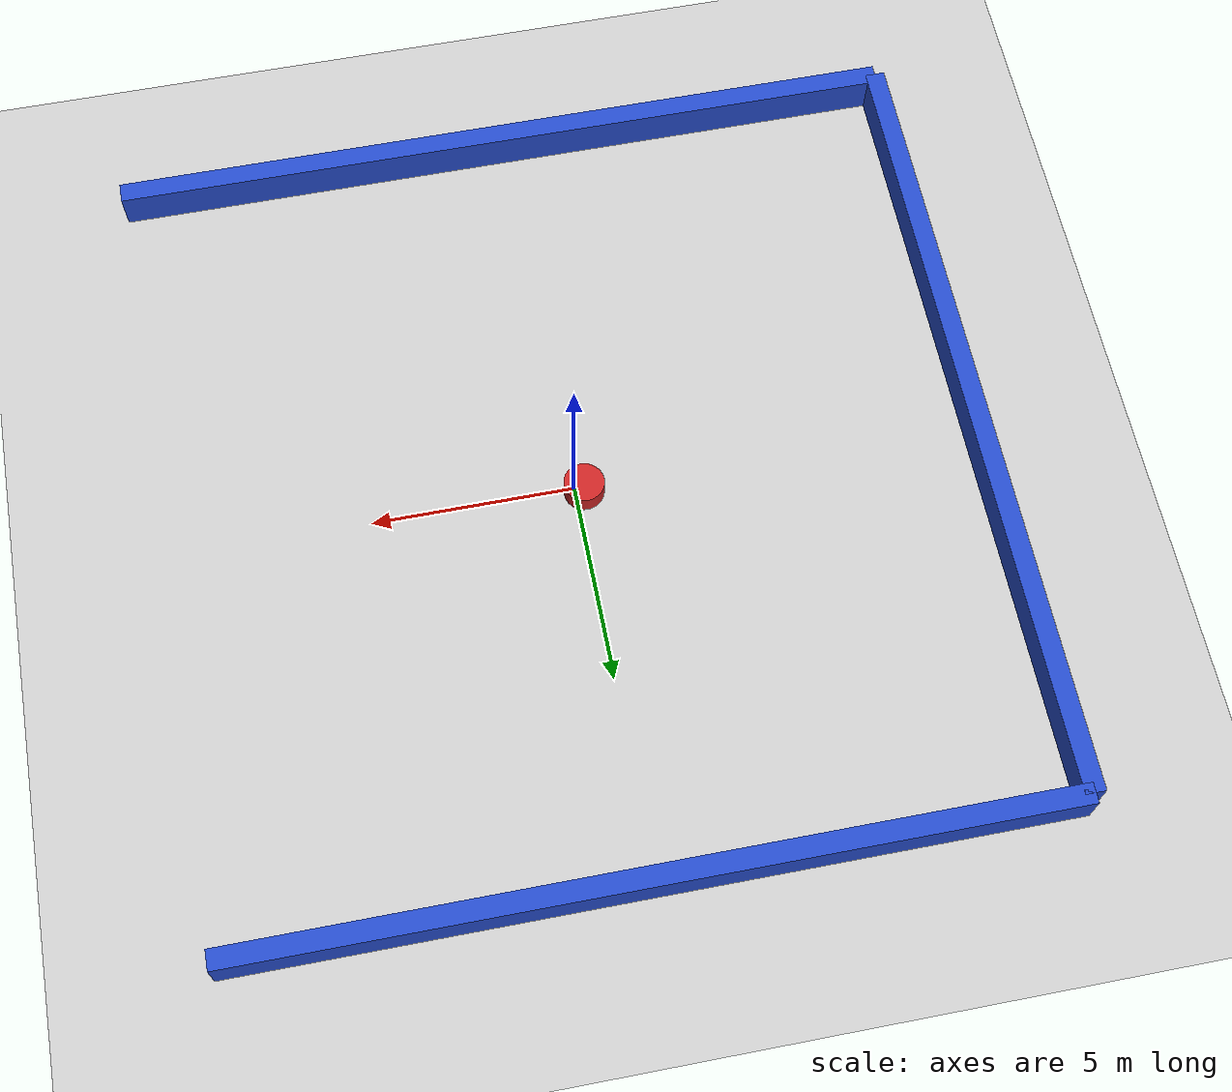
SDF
<?xml version="1.0" ?>
<sdf version="1.6">
   <world name="default">
    <model name="ground_plane">
      <static>1</static>
      <link name="link">
        <collision name="collision">
          <geometry><plane><normal>0 0 1</normal><size>100 100</size></plane></geometry>
          <surface><friction><ode><mu>100</mu><mu2>50</mu2></ode><torsional><ode/></torsional></friction><contact><ode/></contact></surface>
        </collision>
        <visual name="visual">
          <cast_shadows>0</cast_shadows>
          <geometry><plane><normal>0 0 1</normal><size>100 100</size></plane></geometry>
          <material><ambient>0.8 0.8 0.8 1</ambient><diffuse>0.8 0.8 0.8 1</diffuse><specular>0.01 0.01 0.01 1</specular></material>
        </visual>
      </link>
    </model>
    <light name="sun" type="directional">
      <cast_shadows>1</cast_shadows>
      <pose>0 0 10 0 0 0</pose>
      <diffuse>1 1 1 1</diffuse>
      <specular>0.1 0.1 0.1 1</specular>
      <attenuation><range>1000</range><constant>0.9</constant><linear>0.01</linear><quadratic>0.001</quadratic></attenuation>
      <direction>-0.5 0.5 -1</direction>
    </light>

    <model name='hardlibobs_99'>
      <static>1</static>
      <pose frame=''>-0.225000 0.075000 0.000000 0.000000 0.000000 0.000000</pose>
      <link name='link'>
        <inertial>
          <mass>1</mass>
          <inertia>
            <ixx>0.145833</ixx>
            <ixy>0</ixy>
            <ixz>0</ixz>
            <iyy>0.145833</iyy>
            <iyz>0</iyz>
            <izz>0.125</izz>
          </inertia>
        </inertial>
        <collision name='collision'>
           <geometry>
            <cylinder>
                <radius>0.5000</radius>
                 <length> 1 </length>
            </cylinder>
          </geometry>
           <surface>
            <contact>
              <ode/>
            </contact>
            <bounce/>
            <friction>
              <torsional>
                <ode/>
              </torsional>
              <ode/>
            </friction>
          </surface>
        </collision>
        <visual name='visual'>
           <geometry>
            <cylinder>
                <radius>0.5000</radius>
                 <length> 1 </length>
            </cylinder>
          </geometry>
          <material>
            <script>
              <name>Gazebo/Red</name>
              <uri>file://media/materials/scripts/gazebo.material</uri>
            </script>
          </material>
        </visual>
        <self_collide>0</self_collide>
        <kinematic>0</kinematic>
        <gravity>1</gravity>
      </link>
      <plugin name='hardlibobs_99' filename='hardlibobs_99.so'/>
    </model>

    <model name='hardlibobs_126'>
      <static>1</static>
      <pose frame=''>-0.225000 0.075000 0.000000 0.000000 0.000000 0.000000</pose>
      <link name='link'>
        <inertial>
          <mass>1</mass>
          <inertia>
            <ixx>0.145833</ixx>
            <ixy>0</ixy>
            <ixz>0</ixz>
            <iyy>0.145833</iyy>
            <iyz>0</iyz>
            <izz>0.125</izz>
          </inertia>
        </inertial>
        <collision name='collision'>
           <geometry>
            <cylinder>
                <radius>0.5000</radius>
                 <length> 1 </length>
            </cylinder>
          </geometry>
           <surface>
            <contact>
              <ode/>
            </contact>
            <bounce/>
            <friction>
              <torsional>
                <ode/>
              </torsional>
              <ode/>
            </friction>
          </surface>
        </collision>
        <visual name='visual'>
           <geometry>
            <cylinder>
                <radius>0.5000</radius>
                 <length> 1 </length>
            </cylinder>
          </geometry>
          <material>
            <script>
              <name>Gazebo/Red</name>
              <uri>file://media/materials/scripts/gazebo.material</uri>
            </script>
          </material>
        </visual>
        <self_collide>0</self_collide>
        <kinematic>0</kinematic>
        <gravity>1</gravity>
      </link>
      <plugin name='hardlibobs_126' filename='hardlibobs_126.so'/>
    </model>

    <model name='hardlibobs_195'>
      <static>1</static>
      <pose frame=''>-0.225000 0.075000 0.000000 0.000000 0.000000 0.000000</pose>
      <link name='link'>
        <inertial>
          <mass>1</mass>
          <inertia>
            <ixx>0.145833</ixx>
            <ixy>0</ixy>
            <ixz>0</ixz>
            <iyy>0.145833</iyy>
            <iyz>0</iyz>
            <izz>0.125</izz>
          </inertia>
        </inertial>
        <collision name='collision'>
           <geometry>
            <cylinder>
                <radius>0.5000</radius>
                 <length> 1 </length>
            </cylinder>
          </geometry>
           <surface>
            <contact>
              <ode/>
            </contact>
            <bounce/>
            <friction>
              <torsional>
                <ode/>
              </torsional>
              <ode/>
            </friction>
          </surface>
        </collision>
        <visual name='visual'>
           <geometry>
            <cylinder>
                <radius>0.5000</radius>
                 <length> 1 </length>
            </cylinder>
          </geometry>
          <material>
            <script>
              <name>Gazebo/Red</name>
              <uri>file://media/materials/scripts/gazebo.material</uri>
            </script>
          </material>
        </visual>
        <self_collide>0</self_collide>
        <kinematic>0</kinematic>
        <gravity>1</gravity>
      </link>
      <plugin name='hardlibobs_195' filename='hardlibobs_195.so'/>
    </model>

    <model name='hardlibobs_173'>
      <static>1</static>
      <pose frame=''>-0.225000 0.075000 0.000000 0.000000 0.000000 0.000000</pose>
      <link name='link'>
        <inertial>
          <mass>1</mass>
          <inertia>
            <ixx>0.145833</ixx>
            <ixy>0</ixy>
            <ixz>0</ixz>
            <iyy>0.145833</iyy>
            <iyz>0</iyz>
            <izz>0.125</izz>
          </inertia>
        </inertial>
        <collision name='collision'>
           <geometry>
            <cylinder>
                <radius>0.5000</radius>
                 <length> 1 </length>
            </cylinder>
          </geometry>
           <surface>
            <contact>
              <ode/>
            </contact>
            <bounce/>
            <friction>
              <torsional>
                <ode/>
              </torsional>
              <ode/>
            </friction>
          </surface>
        </collision>
        <visual name='visual'>
           <geometry>
            <cylinder>
                <radius>0.5000</radius>
                 <length> 1 </length>
            </cylinder>
          </geometry>
          <material>
            <script>
              <name>Gazebo/Red</name>
              <uri>file://media/materials/scripts/gazebo.material</uri>
            </script>
          </material>
        </visual>
        <self_collide>0</self_collide>
        <kinematic>0</kinematic>
        <gravity>1</gravity>
      </link>
      <plugin name='hardlibobs_173' filename='hardlibobs_173.so'/>
    </model>

    <model name='hardlibobs_125'>
      <static>1</static>
      <pose frame=''>-0.225000 0.075000 0.000000 0.000000 0.000000 0.000000</pose>
      <link name='link'>
        <inertial>
          <mass>1</mass>
          <inertia>
            <ixx>0.145833</ixx>
            <ixy>0</ixy>
            <ixz>0</ixz>
            <iyy>0.145833</iyy>
            <iyz>0</iyz>
            <izz>0.125</izz>
          </inertia>
        </inertial>
        <collision name='collision'>
           <geometry>
            <cylinder>
                <radius>0.5000</radius>
                 <length> 1 </length>
            </cylinder>
          </geometry>
           <surface>
            <contact>
              <ode/>
            </contact>
            <bounce/>
            <friction>
              <torsional>
                <ode/>
              </torsional>
              <ode/>
            </friction>
          </surface>
        </collision>
        <visual name='visual'>
           <geometry>
            <cylinder>
                <radius>0.5000</radius>
                 <length> 1 </length>
            </cylinder>
          </geometry>
          <material>
            <script>
              <name>Gazebo/Red</name>
              <uri>file://media/materials/scripts/gazebo.material</uri>
            </script>
          </material>
        </visual>
        <self_collide>0</self_collide>
        <kinematic>0</kinematic>
        <gravity>1</gravity>
      </link>
      <plugin name='hardlibobs_125' filename='hardlibobs_125.so'/>
    </model>

    <model name='hardlibobs_177'>
      <static>1</static>
      <pose frame=''>-0.225000 0.075000 0.000000 0.000000 0.000000 0.000000</pose>
      <link name='link'>
        <inertial>
          <mass>1</mass>
          <inertia>
            <ixx>0.145833</ixx>
            <ixy>0</ixy>
            <ixz>0</ixz>
            <iyy>0.145833</iyy>
            <iyz>0</iyz>
            <izz>0.125</izz>
          </inertia>
        </inertial>
        <collision name='collision'>
           <geometry>
            <cylinder>
                <radius>0.5000</radius>
                 <length> 1 </length>
            </cylinder>
          </geometry>
           <surface>
            <contact>
              <ode/>
            </contact>
            <bounce/>
            <friction>
              <torsional>
                <ode/>
              </torsional>
              <ode/>
            </friction>
          </surface>
        </collision>
        <visual name='visual'>
           <geometry>
            <cylinder>
                <radius>0.5000</radius>
                 <length> 1 </length>
            </cylinder>
          </geometry>
          <material>
            <script>
              <name>Gazebo/Red</name>
              <uri>file://media/materials/scripts/gazebo.material</uri>
            </script>
          </material>
        </visual>
        <self_collide>0</self_collide>
        <kinematic>0</kinematic>
        <gravity>1</gravity>
      </link>
      <plugin name='hardlibobs_177' filename='hardlibobs_177.so'/>
    </model>

    <model name='hardlibobs_62'>
      <static>1</static>
      <pose frame=''>-0.225000 0.075000 0.000000 0.000000 0.000000 0.000000</pose>
      <link name='link'>
        <inertial>
          <mass>1</mass>
          <inertia>
            <ixx>0.145833</ixx>
            <ixy>0</ixy>
            <ixz>0</ixz>
            <iyy>0.145833</iyy>
            <iyz>0</iyz>
            <izz>0.125</izz>
          </inertia>
        </inertial>
        <collision name='collision'>
           <geometry>
            <cylinder>
                <radius>0.5000</radius>
                 <length> 1 </length>
            </cylinder>
          </geometry>
           <surface>
            <contact>
              <ode/>
            </contact>
            <bounce/>
            <friction>
              <torsional>
                <ode/>
              </torsional>
              <ode/>
            </friction>
          </surface>
        </collision>
        <visual name='visual'>
           <geometry>
            <cylinder>
                <radius>0.5000</radius>
                 <length> 1 </length>
            </cylinder>
          </geometry>
          <material>
            <script>
              <name>Gazebo/Red</name>
              <uri>file://media/materials/scripts/gazebo.material</uri>
            </script>
          </material>
        </visual>
        <self_collide>0</self_collide>
        <kinematic>0</kinematic>
        <gravity>1</gravity>
      </link>
      <plugin name='hardlibobs_62' filename='hardlibobs_62.so'/>
    </model>

    <model name='hardlibobs_170'>
      <static>1</static>
      <pose frame=''>-0.225000 0.075000 0.000000 0.000000 0.000000 0.000000</pose>
      <link name='link'>
        <inertial>
          <mass>1</mass>
          <inertia>
            <ixx>0.145833</ixx>
            <ixy>0</ixy>
            <ixz>0</ixz>
            <iyy>0.145833</iyy>
            <iyz>0</iyz>
            <izz>0.125</izz>
          </inertia>
        </inertial>
        <collision name='collision'>
           <geometry>
            <cylinder>
                <radius>0.5000</radius>
                 <length> 1 </length>
            </cylinder>
          </geometry>
           <surface>
            <contact>
              <ode/>
            </contact>
            <bounce/>
            <friction>
              <torsional>
                <ode/>
              </torsional>
              <ode/>
            </friction>
          </surface>
        </collision>
        <visual name='visual'>
           <geometry>
            <cylinder>
                <radius>0.5000</radius>
                 <length> 1 </length>
            </cylinder>
          </geometry>
          <material>
            <script>
              <name>Gazebo/Red</name>
              <uri>file://media/materials/scripts/gazebo.material</uri>
            </script>
          </material>
        </visual>
        <self_collide>0</self_collide>
        <kinematic>0</kinematic>
        <gravity>1</gravity>
      </link>
      <plugin name='hardlibobs_170' filename='hardlibobs_170.so'/>
    </model>

    <model name='hardlibobs_39'>
      <static>1</static>
      <pose frame=''>-0.225000 0.075000 0.000000 0.000000 0.000000 0.000000</pose>
      <link name='link'>
        <inertial>
          <mass>1</mass>
          <inertia>
            <ixx>0.145833</ixx>
            <ixy>0</ixy>
            <ixz>0</ixz>
            <iyy>0.145833</iyy>
            <iyz>0</iyz>
            <izz>0.125</izz>
          </inertia>
        </inertial>
        <collision name='collision'>
           <geometry>
            <cylinder>
                <radius>0.5000</radius>
                 <length> 1 </length>
            </cylinder>
          </geometry>
           <surface>
            <contact>
              <ode/>
            </contact>
            <bounce/>
            <friction>
              <torsional>
                <ode/>
              </torsional>
              <ode/>
            </friction>
          </surface>
        </collision>
        <visual name='visual'>
           <geometry>
            <cylinder>
                <radius>0.5000</radius>
                 <length> 1 </length>
            </cylinder>
          </geometry>
          <material>
            <script>
              <name>Gazebo/Red</name>
              <uri>file://media/materials/scripts/gazebo.material</uri>
            </script>
          </material>
        </visual>
        <self_collide>0</self_collide>
        <kinematic>0</kinematic>
        <gravity>1</gravity>
      </link>
      <plugin name='hardlibobs_39' filename='hardlibobs_39.so'/>
    </model>

    <model name='hardlibobs_98'>
      <static>1</static>
      <pose frame=''>-0.225000 0.075000 0.000000 0.000000 0.000000 0.000000</pose>
      <link name='link'>
        <inertial>
          <mass>1</mass>
          <inertia>
            <ixx>0.145833</ixx>
            <ixy>0</ixy>
            <ixz>0</ixz>
            <iyy>0.145833</iyy>
            <iyz>0</iyz>
            <izz>0.125</izz>
          </inertia>
        </inertial>
        <collision name='collision'>
           <geometry>
            <cylinder>
                <radius>0.5000</radius>
                 <length> 1 </length>
            </cylinder>
          </geometry>
           <surface>
            <contact>
              <ode/>
            </contact>
            <bounce/>
            <friction>
              <torsional>
                <ode/>
              </torsional>
              <ode/>
            </friction>
          </surface>
        </collision>
        <visual name='visual'>
           <geometry>
            <cylinder>
                <radius>0.5000</radius>
                 <length> 1 </length>
            </cylinder>
          </geometry>
          <material>
            <script>
              <name>Gazebo/Red</name>
              <uri>file://media/materials/scripts/gazebo.material</uri>
            </script>
          </material>
        </visual>
        <self_collide>0</self_collide>
        <kinematic>0</kinematic>
        <gravity>1</gravity>
      </link>
      <plugin name='hardlibobs_98' filename='hardlibobs_98.so'/>
    </model>

    <model name='hardlibobs_198'>
      <static>1</static>
      <pose frame=''>-0.225000 0.075000 0.000000 0.000000 0.000000 0.000000</pose>
      <link name='link'>
        <inertial>
          <mass>1</mass>
          <inertia>
            <ixx>0.145833</ixx>
            <ixy>0</ixy>
            <ixz>0</ixz>
            <iyy>0.145833</iyy>
            <iyz>0</iyz>
            <izz>0.125</izz>
          </inertia>
        </inertial>
        <collision name='collision'>
           <geometry>
            <cylinder>
                <radius>0.5000</radius>
                 <length> 1 </length>
            </cylinder>
          </geometry>
           <surface>
            <contact>
              <ode/>
            </contact>
            <bounce/>
            <friction>
              <torsional>
                <ode/>
              </torsional>
              <ode/>
            </friction>
          </surface>
        </collision>
        <visual name='visual'>
           <geometry>
            <cylinder>
                <radius>0.5000</radius>
                 <length> 1 </length>
            </cylinder>
          </geometry>
          <material>
            <script>
              <name>Gazebo/Red</name>
              <uri>file://media/materials/scripts/gazebo.material</uri>
            </script>
          </material>
        </visual>
        <self_collide>0</self_collide>
        <kinematic>0</kinematic>
        <gravity>1</gravity>
      </link>
      <plugin name='hardlibobs_198' filename='hardlibobs_198.so'/>
    </model>

    <model name='hardlibobs_24'>
      <static>1</static>
      <pose frame=''>-0.225000 0.075000 0.000000 0.000000 0.000000 0.000000</pose>
      <link name='link'>
        <inertial>
          <mass>1</mass>
          <inertia>
            <ixx>0.145833</ixx>
            <ixy>0</ixy>
            <ixz>0</ixz>
            <iyy>0.145833</iyy>
            <iyz>0</iyz>
            <izz>0.125</izz>
          </inertia>
        </inertial>
        <collision name='collision'>
           <geometry>
            <cylinder>
                <radius>0.5000</radius>
                 <length> 1 </length>
            </cylinder>
          </geometry>
           <surface>
            <contact>
              <ode/>
            </contact>
            <bounce/>
            <friction>
              <torsional>
                <ode/>
              </torsional>
              <ode/>
            </friction>
          </surface>
        </collision>
        <visual name='visual'>
           <geometry>
            <cylinder>
                <radius>0.5000</radius>
                 <length> 1 </length>
            </cylinder>
          </geometry>
          <material>
            <script>
              <name>Gazebo/Red</name>
              <uri>file://media/materials/scripts/gazebo.material</uri>
            </script>
          </material>
        </visual>
        <self_collide>0</self_collide>
        <kinematic>0</kinematic>
        <gravity>1</gravity>
      </link>
      <plugin name='hardlibobs_24' filename='hardlibobs_24.so'/>
    </model>

    <model name='hardlibobs_131'>
      <static>1</static>
      <pose frame=''>-0.225000 0.075000 0.000000 0.000000 0.000000 0.000000</pose>
      <link name='link'>
        <inertial>
          <mass>1</mass>
          <inertia>
            <ixx>0.145833</ixx>
            <ixy>0</ixy>
            <ixz>0</ixz>
            <iyy>0.145833</iyy>
            <iyz>0</iyz>
            <izz>0.125</izz>
          </inertia>
        </inertial>
        <collision name='collision'>
           <geometry>
            <cylinder>
                <radius>0.5000</radius>
                 <length> 1 </length>
            </cylinder>
          </geometry>
           <surface>
            <contact>
              <ode/>
            </contact>
            <bounce/>
            <friction>
              <torsional>
                <ode/>
              </torsional>
              <ode/>
            </friction>
          </surface>
        </collision>
        <visual name='visual'>
           <geometry>
            <cylinder>
                <radius>0.5000</radius>
                 <length> 1 </length>
            </cylinder>
          </geometry>
          <material>
            <script>
              <name>Gazebo/Red</name>
              <uri>file://media/materials/scripts/gazebo.material</uri>
            </script>
          </material>
        </visual>
        <self_collide>0</self_collide>
        <kinematic>0</kinematic>
        <gravity>1</gravity>
      </link>
      <plugin name='hardlibobs_131' filename='hardlibobs_131.so'/>
    </model>

    <model name='hardlibobs_17'>
      <static>1</static>
      <pose frame=''>-0.225000 0.075000 0.000000 0.000000 0.000000 0.000000</pose>
      <link name='link'>
        <inertial>
          <mass>1</mass>
          <inertia>
            <ixx>0.145833</ixx>
            <ixy>0</ixy>
            <ixz>0</ixz>
            <iyy>0.145833</iyy>
            <iyz>0</iyz>
            <izz>0.125</izz>
          </inertia>
        </inertial>
        <collision name='collision'>
           <geometry>
            <cylinder>
                <radius>0.5000</radius>
                 <length> 1 </length>
            </cylinder>
          </geometry>
           <surface>
            <contact>
              <ode/>
            </contact>
            <bounce/>
            <friction>
              <torsional>
                <ode/>
              </torsional>
              <ode/>
            </friction>
          </surface>
        </collision>
        <visual name='visual'>
           <geometry>
            <cylinder>
                <radius>0.5000</radius>
                 <length> 1 </length>
            </cylinder>
          </geometry>
          <material>
            <script>
              <name>Gazebo/Red</name>
              <uri>file://media/materials/scripts/gazebo.material</uri>
            </script>
          </material>
        </visual>
        <self_collide>0</self_collide>
        <kinematic>0</kinematic>
        <gravity>1</gravity>
      </link>
      <plugin name='hardlibobs_17' filename='hardlibobs_17.so'/>
    </model>

    <model name='hardlibobs_51'>
      <static>1</static>
      <pose frame=''>-0.225000 0.075000 0.000000 0.000000 0.000000 0.000000</pose>
      <link name='link'>
        <inertial>
          <mass>1</mass>
          <inertia>
            <ixx>0.145833</ixx>
            <ixy>0</ixy>
            <ixz>0</ixz>
            <iyy>0.145833</iyy>
            <iyz>0</iyz>
            <izz>0.125</izz>
          </inertia>
        </inertial>
        <collision name='collision'>
           <geometry>
            <cylinder>
                <radius>0.5000</radius>
                 <length> 1 </length>
            </cylinder>
          </geometry>
           <surface>
            <contact>
              <ode/>
            </contact>
            <bounce/>
            <friction>
              <torsional>
                <ode/>
              </torsional>
              <ode/>
            </friction>
          </surface>
        </collision>
        <visual name='visual'>
           <geometry>
            <cylinder>
                <radius>0.5000</radius>
                 <length> 1 </length>
            </cylinder>
          </geometry>
          <material>
            <script>
              <name>Gazebo/Red</name>
              <uri>file://media/materials/scripts/gazebo.material</uri>
            </script>
          </material>
        </visual>
        <self_collide>0</self_collide>
        <kinematic>0</kinematic>
        <gravity>1</gravity>
      </link>
      <plugin name='hardlibobs_51' filename='hardlibobs_51.so'/>
    </model>

    <model name='hardlibobs_143'>
      <static>1</static>
      <pose frame=''>-0.225000 0.075000 0.000000 0.000000 0.000000 0.000000</pose>
      <link name='link'>
        <inertial>
          <mass>1</mass>
          <inertia>
            <ixx>0.145833</ixx>
            <ixy>0</ixy>
            <ixz>0</ixz>
            <iyy>0.145833</iyy>
            <iyz>0</iyz>
            <izz>0.125</izz>
          </inertia>
        </inertial>
        <collision name='collision'>
           <geometry>
            <cylinder>
                <radius>0.5000</radius>
                 <length> 1 </length>
            </cylinder>
          </geometry>
           <surface>
            <contact>
              <ode/>
            </contact>
            <bounce/>
            <friction>
              <torsional>
                <ode/>
              </torsional>
              <ode/>
            </friction>
          </surface>
        </collision>
        <visual name='visual'>
           <geometry>
            <cylinder>
                <radius>0.5000</radius>
                 <length> 1 </length>
            </cylinder>
          </geometry>
          <material>
            <script>
              <name>Gazebo/Red</name>
              <uri>file://media/materials/scripts/gazebo.material</uri>
            </script>
          </material>
        </visual>
        <self_collide>0</self_collide>
        <kinematic>0</kinematic>
        <gravity>1</gravity>
      </link>
      <plugin name='hardlibobs_143' filename='hardlibobs_143.so'/>
    </model>

    <model name='hardlibobs_139'>
      <static>1</static>
      <pose frame=''>-0.225000 0.075000 0.000000 0.000000 0.000000 0.000000</pose>
      <link name='link'>
        <inertial>
          <mass>1</mass>
          <inertia>
            <ixx>0.145833</ixx>
            <ixy>0</ixy>
            <ixz>0</ixz>
            <iyy>0.145833</iyy>
            <iyz>0</iyz>
            <izz>0.125</izz>
          </inertia>
        </inertial>
        <collision name='collision'>
           <geometry>
            <cylinder>
                <radius>0.5000</radius>
                 <length> 1 </length>
            </cylinder>
          </geometry>
           <surface>
            <contact>
              <ode/>
            </contact>
            <bounce/>
            <friction>
              <torsional>
                <ode/>
              </torsional>
              <ode/>
            </friction>
          </surface>
        </collision>
        <visual name='visual'>
           <geometry>
            <cylinder>
                <radius>0.5000</radius>
                 <length> 1 </length>
            </cylinder>
          </geometry>
          <material>
            <script>
              <name>Gazebo/Red</name>
              <uri>file://media/materials/scripts/gazebo.material</uri>
            </script>
          </material>
        </visual>
        <self_collide>0</self_collide>
        <kinematic>0</kinematic>
        <gravity>1</gravity>
      </link>
      <plugin name='hardlibobs_139' filename='hardlibobs_139.so'/>
    </model>

    <model name='hardlibobs_167'>
      <static>1</static>
      <pose frame=''>-0.225000 0.075000 0.000000 0.000000 0.000000 0.000000</pose>
      <link name='link'>
        <inertial>
          <mass>1</mass>
          <inertia>
            <ixx>0.145833</ixx>
            <ixy>0</ixy>
            <ixz>0</ixz>
            <iyy>0.145833</iyy>
            <iyz>0</iyz>
            <izz>0.125</izz>
          </inertia>
        </inertial>
        <collision name='collision'>
           <geometry>
            <cylinder>
                <radius>0.5000</radius>
                 <length> 1 </length>
            </cylinder>
          </geometry>
           <surface>
            <contact>
              <ode/>
            </contact>
            <bounce/>
            <friction>
              <torsional>
                <ode/>
              </torsional>
              <ode/>
            </friction>
          </surface>
        </collision>
        <visual name='visual'>
           <geometry>
            <cylinder>
                <radius>0.5000</radius>
                 <length> 1 </length>
            </cylinder>
          </geometry>
          <material>
            <script>
              <name>Gazebo/Red</name>
              <uri>file://media/materials/scripts/gazebo.material</uri>
            </script>
          </material>
        </visual>
        <self_collide>0</self_collide>
        <kinematic>0</kinematic>
        <gravity>1</gravity>
      </link>
      <plugin name='hardlibobs_167' filename='hardlibobs_167.so'/>
    </model>

      <model name="back_wall">
      <static>1</static>\   <pose>-10 0 .5 0 0 0</pose>        <link name="box_link">

	<collision name='collision'>
            <geometry>
              <box>
                <size>.5 20 1</size>
              </box>
            </geometry>
           <surface>
            <contact>
              <ode/>
            </contact>
            <bounce/>
            <friction>
              <torsional>
                <ode/>
              </torsional>
              <ode/>
            </friction>
          </surface>
        </collision>

          <visual name="visual">
            <geometry>
              <box>
                <size>.5 20 1</size>
              </box>
            </geometry>
          <material>
                 <script>
                     <name>Gazebo/Blue</name>
                         <uri>file://media/materials/scripts/gazebo.material</uri>
                         </script>
                     </material>
          </visual>
        </link>
      </model>
      <model name="top_wall">
      <static>1</static>
       <pose>0 10 .5 0 0 0</pose>        <link name="box_link">

	<collision name='collision'>
           <geometry>
              <box>
                <size>20 .5 1</size>
              </box>
            </geometry>
           <surface>
            <contact>
              <ode/>
            </contact>
            <bounce/>
            <friction>
              <torsional>
                <ode/>
              </torsional>
              <ode/>
            </friction>
          </surface>
        </collision>
          <visual name="visual">
            <geometry>
              <box>
                <size>20 .5 1</size>
              </box>
            </geometry>
          <material>
                 <script>
                     <name>Gazebo/Blue</name>
                         <uri>file://media/materials/scripts/gazebo.material</uri>
                         </script>
                     </material>
          </visual>
        </link>
      </model>
      <model name="bottom_wall">
      <static>1</static>
       <pose>0 -10 .5 0 0 0</pose>        <link name="box_link">
	<collision name='collision'>
            <geometry>
              <box>
                <size>20 .5 1</size>
              </box>
            </geometry>
           <surface>
            <contact>
              <ode/>
            </contact>
            <bounce/>
            <friction>
              <torsional>
                <ode/>
              </torsional>
              <ode/>
            </friction>
          </surface>
        </collision>
          <visual name="visual">
            <geometry>
              <box>
                <size>20 .5 1</size>
              </box>
            </geometry>
          <material>
                 <script>
                     <name>Gazebo/Blue</name>
                         <uri>file://media/materials/scripts/gazebo.material</uri>
                         </script>
                     </material>
          </visual>
        </link>
      </model>
   </world>
</sdf>
